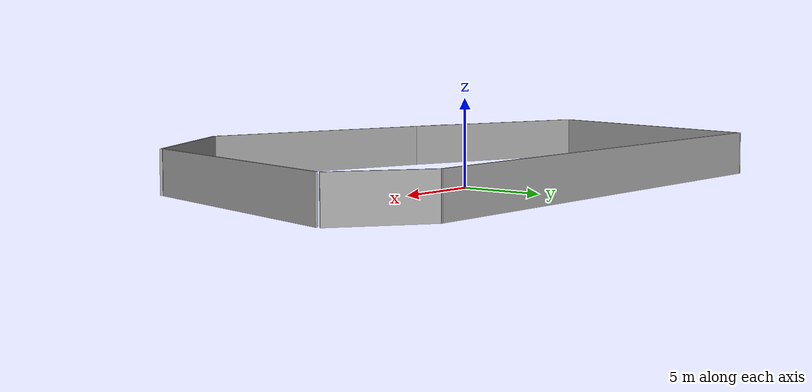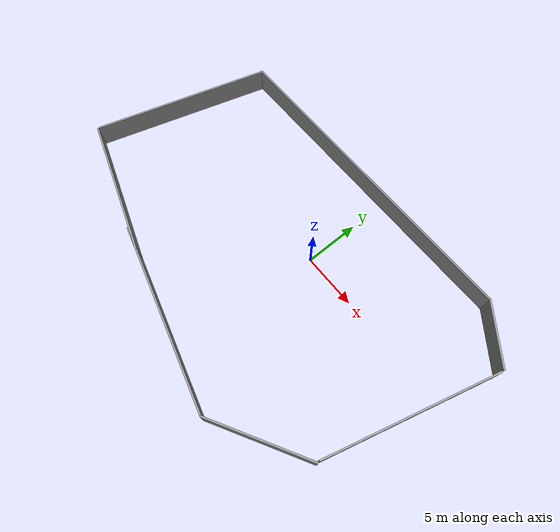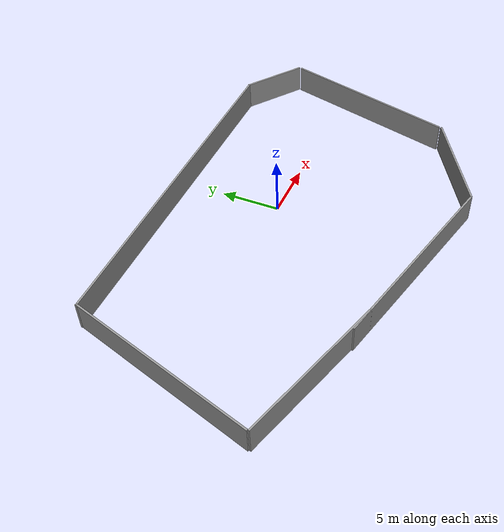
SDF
<?xml version='1.0'?>
<sdf version='1.7'>
  <model name='building'>
    <link name='Wall_0'>
      <pose>-18.962 0.546869 0 0 -0 1.28876</pose>
      <self_collide>0</self_collide>
      <enable_wind>0</enable_wind>
      <kinematic>0</kinematic>
      <inertial>
        <inertia>
          <ixx>0</ixx>
          <ixy>0</ixy>
          <ixz>0</ixz>
          <iyy>0</iyy>
          <iyz>0</iyz>
          <izz>0</izz>
        </inertia>
        <mass>0</mass>
        <pose>0 0 0 0 -0 0</pose>
      </inertial>
      <visual name='Wall_0_Visual'>
        <pose>0 0 1.25 0 -0 0</pose>
        <geometry>
          <box>
            <size>16.047 0.15 2.5</size>
          </box>
        </geometry>
        <material>
          <script>
            <uri>file://media/materials/scripts/gazebo.material</uri>
            <name>Gazebo/Grey</name>
          </script>
          <ambient>1 1 1 1</ambient>
          <shader type='pixel'/>
        </material>
        <meta>
          <layer>0</layer>
        </meta>
        <transparency>0</transparency>
        <cast_shadows>1</cast_shadows>
      </visual>
      <collision name='Wall_0_Collision'>
        <laser_retro>0</laser_retro>
        <max_contacts>10</max_contacts>
        <pose>0 0 1.25 0 -0 0</pose>
        <geometry>
          <box>
            <size>16.047 0.15 2.5</size>
          </box>
        </geometry>
        <surface>
          <friction>
            <ode>
              <mu>1</mu>
              <mu2>1</mu2>
              <fdir1>0 0 0</fdir1>
              <slip1>0</slip1>
              <slip2>0</slip2>
            </ode>
            <torsional>
              <coefficient>1</coefficient>
              <patch_radius>0</patch_radius>
              <surface_radius>0</surface_radius>
              <use_patch_radius>1</use_patch_radius>
              <ode>
                <slip>0</slip>
              </ode>
            </torsional>
          </friction>
          <bounce>
            <restitution_coefficient>0</restitution_coefficient>
            <threshold>1e+06</threshold>
          </bounce>
          <contact>
            <collide_without_contact>0</collide_without_contact>
            <collide_without_contact_bitmask>1</collide_without_contact_bitmask>
            <collide_bitmask>1</collide_bitmask>
            <ode>
              <soft_cfm>0</soft_cfm>
              <soft_erp>0.2</soft_erp>
              <kp>1e+13</kp>
              <kd>1</kd>
              <max_vel>0.01</max_vel>
              <min_depth>0</min_depth>
            </ode>
            <bullet>
              <split_impulse>1</split_impulse>
              <split_impulse_penetration_threshold>-0.01</split_impulse_penetration_threshold>
              <soft_cfm>0</soft_cfm>
              <soft_erp>0.2</soft_erp>
              <kp>1e+13</kp>
              <kd>1</kd>
            </bullet>
          </contact>
        </surface>
      </collision>
    </link>
    <link name='Wall_1'>
      <pose>-2.22989 8.18052 0 0 -0 0</pose>
      <self_collide>0</self_collide>
      <enable_wind>0</enable_wind>
      <kinematic>0</kinematic>
      <visual name='Wall_1_Visual'>
        <pose>0 0 1.25 0 -0 0</pose>
        <geometry>
          <box>
            <size>29.25 0.15 2.5</size>
          </box>
        </geometry>
        <material>
          <script>
            <uri>file://media/materials/scripts/gazebo.material</uri>
            <name>Gazebo/Grey</name>
          </script>
          <ambient>1 1 1 1</ambient>
          <shader type='pixel'/>
        </material>
        <meta>
          <layer>0</layer>
        </meta>
        <transparency>0</transparency>
        <cast_shadows>1</cast_shadows>
      </visual>
      <collision name='Wall_1_Collision'>
        <laser_retro>0</laser_retro>
        <max_contacts>10</max_contacts>
        <pose>0 0 1.25 0 -0 0</pose>
        <geometry>
          <box>
            <size>29.25 0.15 2.5</size>
          </box>
        </geometry>
        <surface>
          <friction>
            <ode>
              <mu>1</mu>
              <mu2>1</mu2>
              <fdir1>0 0 0</fdir1>
              <slip1>0</slip1>
              <slip2>0</slip2>
            </ode>
            <torsional>
              <coefficient>1</coefficient>
              <patch_radius>0</patch_radius>
              <surface_radius>0</surface_radius>
              <use_patch_radius>1</use_patch_radius>
              <ode>
                <slip>0</slip>
              </ode>
            </torsional>
          </friction>
          <bounce>
            <restitution_coefficient>0</restitution_coefficient>
            <threshold>1e+06</threshold>
          </bounce>
          <contact>
            <collide_without_contact>0</collide_without_contact>
            <collide_without_contact_bitmask>1</collide_without_contact_bitmask>
            <collide_bitmask>1</collide_bitmask>
            <ode>
              <soft_cfm>0</soft_cfm>
              <soft_erp>0.2</soft_erp>
              <kp>1e+13</kp>
              <kd>1</kd>
              <max_vel>0.01</max_vel>
              <min_depth>0</min_depth>
            </ode>
            <bullet>
              <split_impulse>1</split_impulse>
              <split_impulse_penetration_threshold>-0.01</split_impulse_penetration_threshold>
              <soft_cfm>0</soft_cfm>
              <soft_erp>0.2</soft_erp>
              <kp>1e+13</kp>
              <kd>1</kd>
            </bullet>
          </contact>
        </surface>
      </collision>
    </link>
    <link name='Wall_3'>
      <pose>-15.2019 -9.22193 0 0 0 -0.317638</pose>
      <self_collide>0</self_collide>
      <enable_wind>0</enable_wind>
      <kinematic>0</kinematic>
      <inertial>
        <inertia>
          <ixx>0</ixx>
          <ixy>0</ixy>
          <ixz>0</ixz>
          <iyy>0</iyy>
          <iyz>0</iyz>
          <izz>0</izz>
        </inertia>
        <mass>0</mass>
        <pose>0 0 0 0 -0 0</pose>
      </inertial>
      <visual name='Wall_3_Visual'>
        <pose>0 0 1.25 0 -0 0</pose>
        <geometry>
          <box>
            <size>12.615 0.15 2.5</size>
          </box>
        </geometry>
        <material>
          <script>
            <uri>file://media/materials/scripts/gazebo.material</uri>
            <name>Gazebo/Grey</name>
          </script>
          <ambient>1 1 1 1</ambient>
          <shader type='pixel'/>
        </material>
        <meta>
          <layer>0</layer>
        </meta>
        <transparency>0</transparency>
        <cast_shadows>1</cast_shadows>
      </visual>
      <collision name='Wall_3_Collision'>
        <laser_retro>0</laser_retro>
        <max_contacts>10</max_contacts>
        <pose>0 0 1.25 0 -0 0</pose>
        <geometry>
          <box>
            <size>12.615 0.15 2.5</size>
          </box>
        </geometry>
        <surface>
          <friction>
            <ode>
              <mu>1</mu>
              <mu2>1</mu2>
              <fdir1>0 0 0</fdir1>
              <slip1>0</slip1>
              <slip2>0</slip2>
            </ode>
            <torsional>
              <coefficient>1</coefficient>
              <patch_radius>0</patch_radius>
              <surface_radius>0</surface_radius>
              <use_patch_radius>1</use_patch_radius>
              <ode>
                <slip>0</slip>
              </ode>
            </torsional>
          </friction>
          <bounce>
            <restitution_coefficient>0</restitution_coefficient>
            <threshold>1e+06</threshold>
          </bounce>
          <contact>
            <collide_without_contact>0</collide_without_contact>
            <collide_without_contact_bitmask>1</collide_without_contact_bitmask>
            <collide_bitmask>1</collide_bitmask>
            <ode>
              <soft_cfm>0</soft_cfm>
              <soft_erp>0.2</soft_erp>
              <kp>1e+13</kp>
              <kd>1</kd>
              <max_vel>0.01</max_vel>
              <min_depth>0</min_depth>
            </ode>
            <bullet>
              <split_impulse>1</split_impulse>
              <split_impulse_penetration_threshold>-0.01</split_impulse_penetration_threshold>
              <soft_cfm>0</soft_cfm>
              <soft_erp>0.2</soft_erp>
              <kp>1e+13</kp>
              <kd>1</kd>
            </bullet>
          </contact>
        </surface>
      </collision>
    </link>
    <link name='Wall_4'>
      <pose>-3.23249 -12.7928 0 0 0 -0.261799</pose>
      <self_collide>0</self_collide>
      <enable_wind>0</enable_wind>
      <kinematic>0</kinematic>
      <visual name='Wall_4_Visual'>
        <pose>0 0 1.25 0 -0 0</pose>
        <geometry>
          <box>
            <size>16.75 0.15 2.5</size>
          </box>
        </geometry>
        <material>
          <script>
            <uri>file://media/materials/scripts/gazebo.material</uri>
            <name>Gazebo/Grey</name>
          </script>
          <ambient>1 1 1 1</ambient>
          <shader type='pixel'/>
        </material>
        <meta>
          <layer>0</layer>
        </meta>
        <transparency>0</transparency>
        <cast_shadows>1</cast_shadows>
      </visual>
      <collision name='Wall_4_Collision'>
        <laser_retro>0</laser_retro>
        <max_contacts>10</max_contacts>
        <pose>0 0 1.25 0 -0 0</pose>
        <geometry>
          <box>
            <size>16.75 0.15 2.5</size>
          </box>
        </geometry>
        <surface>
          <friction>
            <ode>
              <mu>1</mu>
              <mu2>1</mu2>
              <fdir1>0 0 0</fdir1>
              <slip1>0</slip1>
              <slip2>0</slip2>
            </ode>
            <torsional>
              <coefficient>1</coefficient>
              <patch_radius>0</patch_radius>
              <surface_radius>0</surface_radius>
              <use_patch_radius>1</use_patch_radius>
              <ode>
                <slip>0</slip>
              </ode>
            </torsional>
          </friction>
          <bounce>
            <restitution_coefficient>0</restitution_coefficient>
            <threshold>1e+06</threshold>
          </bounce>
          <contact>
            <collide_without_contact>0</collide_without_contact>
            <collide_without_contact_bitmask>1</collide_without_contact_bitmask>
            <collide_bitmask>1</collide_bitmask>
            <ode>
              <soft_cfm>0</soft_cfm>
              <soft_erp>0.2</soft_erp>
              <kp>1e+13</kp>
              <kd>1</kd>
              <max_vel>0.01</max_vel>
              <min_depth>0</min_depth>
            </ode>
            <bullet>
              <split_impulse>1</split_impulse>
              <split_impulse_penetration_threshold>-0.01</split_impulse_penetration_threshold>
              <soft_cfm>0</soft_cfm>
              <soft_erp>0.2</soft_erp>
              <kp>1e+13</kp>
              <kd>1</kd>
            </bullet>
          </contact>
        </surface>
      </collision>
    </link>
    <link name='Wall_5'>
      <pose>8.8882 -12.6818 0 0 -0 0.523599</pose>
      <self_collide>0</self_collide>
      <enable_wind>0</enable_wind>
      <kinematic>0</kinematic>
      <visual name='Wall_5_Visual'>
        <pose>0 0 1.25 0 -0 0</pose>
        <geometry>
          <box>
            <size>9.25 0.15 2.5</size>
          </box>
        </geometry>
        <material>
          <script>
            <uri>file://media/materials/scripts/gazebo.material</uri>
            <name>Gazebo/Grey</name>
          </script>
          <ambient>1 1 1 1</ambient>
          <shader type='pixel'/>
        </material>
        <meta>
          <layer>0</layer>
        </meta>
        <transparency>0</transparency>
        <cast_shadows>1</cast_shadows>
      </visual>
      <collision name='Wall_5_Collision'>
        <laser_retro>0</laser_retro>
        <max_contacts>10</max_contacts>
        <pose>0 0 1.25 0 -0 0</pose>
        <geometry>
          <box>
            <size>9.25 0.15 2.5</size>
          </box>
        </geometry>
        <surface>
          <friction>
            <ode>
              <mu>1</mu>
              <mu2>1</mu2>
              <fdir1>0 0 0</fdir1>
              <slip1>0</slip1>
              <slip2>0</slip2>
            </ode>
            <torsional>
              <coefficient>1</coefficient>
              <patch_radius>0</patch_radius>
              <surface_radius>0</surface_radius>
              <use_patch_radius>1</use_patch_radius>
              <ode>
                <slip>0</slip>
              </ode>
            </torsional>
          </friction>
          <bounce>
            <restitution_coefficient>0</restitution_coefficient>
            <threshold>1e+06</threshold>
          </bounce>
          <contact>
            <collide_without_contact>0</collide_without_contact>
            <collide_without_contact_bitmask>1</collide_without_contact_bitmask>
            <collide_bitmask>1</collide_bitmask>
            <ode>
              <soft_cfm>0</soft_cfm>
              <soft_erp>0.2</soft_erp>
              <kp>1e+13</kp>
              <kd>1</kd>
              <max_vel>0.01</max_vel>
              <min_depth>0</min_depth>
            </ode>
            <bullet>
              <split_impulse>1</split_impulse>
              <split_impulse_penetration_threshold>-0.01</split_impulse_penetration_threshold>
              <soft_cfm>0</soft_cfm>
              <soft_erp>0.2</soft_erp>
              <kp>1e+13</kp>
              <kd>1</kd>
            </bullet>
          </contact>
        </surface>
      </collision>
    </link>
    <link name='Wall_6'>
      <pose>14.8114 -2.77564 0 0 -0 1.309</pose>
      <self_collide>0</self_collide>
      <enable_wind>0</enable_wind>
      <kinematic>0</kinematic>
      <inertial>
        <inertia>
          <ixx>0</ixx>
          <ixy>0</ixy>
          <ixz>0</ixz>
          <iyy>0</iyy>
          <iyz>0</iyz>
          <izz>0</izz>
        </inertia>
        <mass>0</mass>
        <pose>0 0 0 0 -0 0</pose>
      </inertial>
      <visual name='Wall_6_Visual'>
        <pose>0 0 1.25 0 -0 0</pose>
        <geometry>
          <box>
            <size>15.4065 0.15 2.5</size>
          </box>
        </geometry>
        <material>
          <script>
            <uri>file://media/materials/scripts/gazebo.material</uri>
            <name>Gazebo/Grey</name>
          </script>
          <ambient>1 1 1 1</ambient>
          <shader type='pixel'/>
        </material>
        <meta>
          <layer>0</layer>
        </meta>
        <transparency>0</transparency>
        <cast_shadows>1</cast_shadows>
      </visual>
      <collision name='Wall_6_Collision'>
        <laser_retro>0</laser_retro>
        <max_contacts>10</max_contacts>
        <pose>0 0 1.25 0 -0 0</pose>
        <geometry>
          <box>
            <size>15.4065 0.15 2.5</size>
          </box>
        </geometry>
        <surface>
          <friction>
            <ode>
              <mu>1</mu>
              <mu2>1</mu2>
              <fdir1>0 0 0</fdir1>
              <slip1>0</slip1>
              <slip2>0</slip2>
            </ode>
            <torsional>
              <coefficient>1</coefficient>
              <patch_radius>0</patch_radius>
              <surface_radius>0</surface_radius>
              <use_patch_radius>1</use_patch_radius>
              <ode>
                <slip>0</slip>
              </ode>
            </torsional>
          </friction>
          <bounce>
            <restitution_coefficient>0</restitution_coefficient>
            <threshold>1e+06</threshold>
          </bounce>
          <contact>
            <collide_without_contact>0</collide_without_contact>
            <collide_without_contact_bitmask>1</collide_without_contact_bitmask>
            <collide_bitmask>1</collide_bitmask>
            <ode>
              <soft_cfm>0</soft_cfm>
              <soft_erp>0.2</soft_erp>
              <kp>1e+13</kp>
              <kd>1</kd>
              <max_vel>0.01</max_vel>
              <min_depth>0</min_depth>
            </ode>
            <bullet>
              <split_impulse>1</split_impulse>
              <split_impulse_penetration_threshold>-0.01</split_impulse_penetration_threshold>
              <soft_cfm>0</soft_cfm>
              <soft_erp>0.2</soft_erp>
              <kp>1e+13</kp>
              <kd>1</kd>
            </bullet>
          </contact>
        </surface>
      </collision>
    </link>
    <link name='Wall_7'>
      <pose>14.5435 6.54803 0 0 -0 2.50826</pose>
      <self_collide>0</self_collide>
      <enable_wind>0</enable_wind>
      <kinematic>0</kinematic>
      <visual name='Wall_7_Visual'>
        <pose>0 0 1.25 0 -0 0</pose>
        <geometry>
          <box>
            <size>5.6667 0.15 2.5</size>
          </box>
        </geometry>
        <material>
          <script>
            <uri>file://media/materials/scripts/gazebo.material</uri>
            <name>Gazebo/Grey</name>
          </script>
          <ambient>1 1 1 1</ambient>
          <shader type='pixel'/>
        </material>
        <meta>
          <layer>0</layer>
        </meta>
        <transparency>0</transparency>
        <cast_shadows>1</cast_shadows>
      </visual>
      <collision name='Wall_7_Collision'>
        <laser_retro>0</laser_retro>
        <max_contacts>10</max_contacts>
        <pose>0 0 1.25 0 -0 0</pose>
        <geometry>
          <box>
            <size>5.6667 0.15 2.5</size>
          </box>
        </geometry>
        <surface>
          <friction>
            <ode>
              <mu>1</mu>
              <mu2>1</mu2>
              <fdir1>0 0 0</fdir1>
              <slip1>0</slip1>
              <slip2>0</slip2>
            </ode>
            <torsional>
              <coefficient>1</coefficient>
              <patch_radius>0</patch_radius>
              <surface_radius>0</surface_radius>
              <use_patch_radius>1</use_patch_radius>
              <ode>
                <slip>0</slip>
              </ode>
            </torsional>
          </friction>
          <bounce>
            <restitution_coefficient>0</restitution_coefficient>
            <threshold>1e+06</threshold>
          </bounce>
          <contact>
            <collide_without_contact>0</collide_without_contact>
            <collide_without_contact_bitmask>1</collide_without_contact_bitmask>
            <collide_bitmask>1</collide_bitmask>
            <ode>
              <soft_cfm>0</soft_cfm>
              <soft_erp>0.2</soft_erp>
              <kp>1e+13</kp>
              <kd>1</kd>
              <max_vel>0.01</max_vel>
              <min_depth>0</min_depth>
            </ode>
            <bullet>
              <split_impulse>1</split_impulse>
              <split_impulse_penetration_threshold>-0.01</split_impulse_penetration_threshold>
              <soft_cfm>0</soft_cfm>
              <soft_erp>0.2</soft_erp>
              <kp>1e+13</kp>
              <kd>1</kd>
            </bullet>
          </contact>
        </surface>
      </collision>
    </link>
    <static>1</static>
    <allow_auto_disable>1</allow_auto_disable>
  </model>
</sdf>
